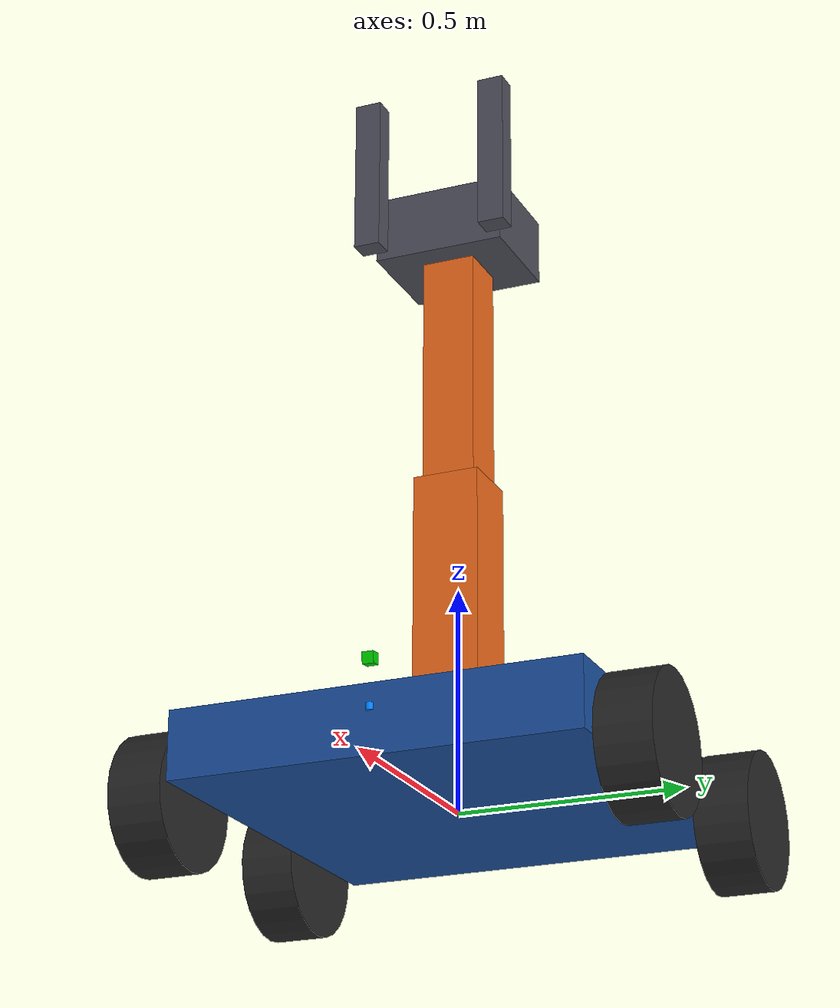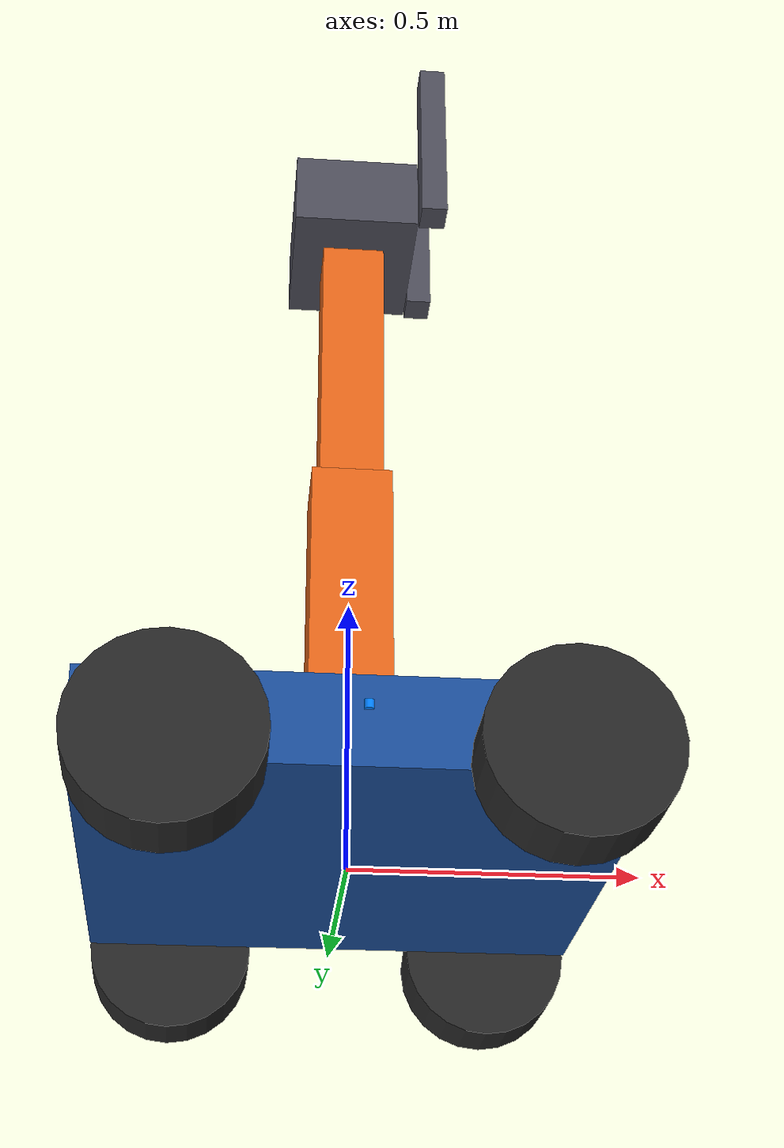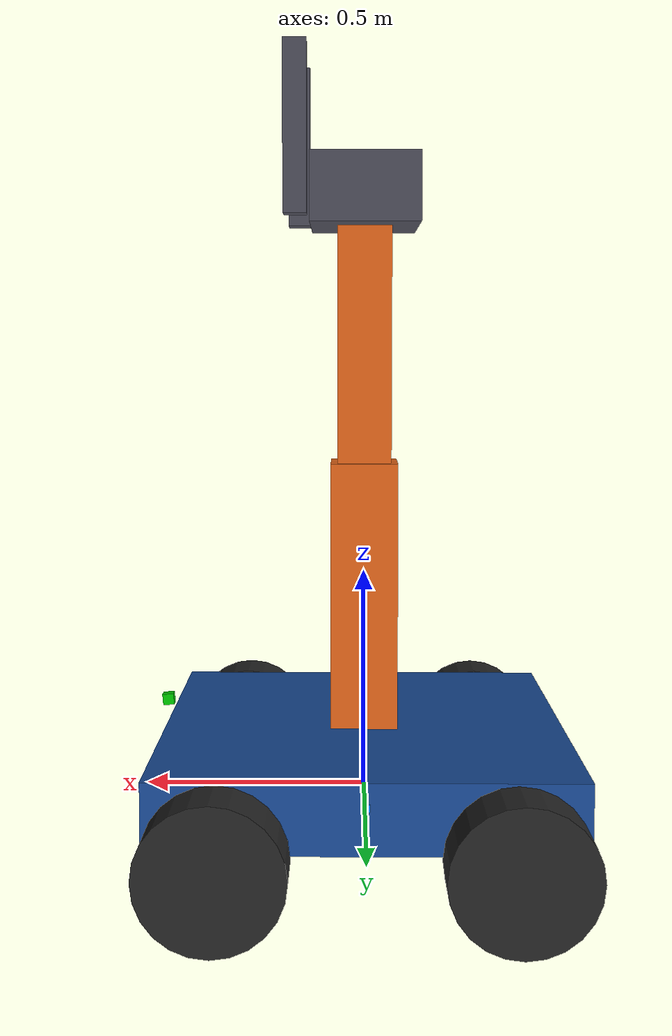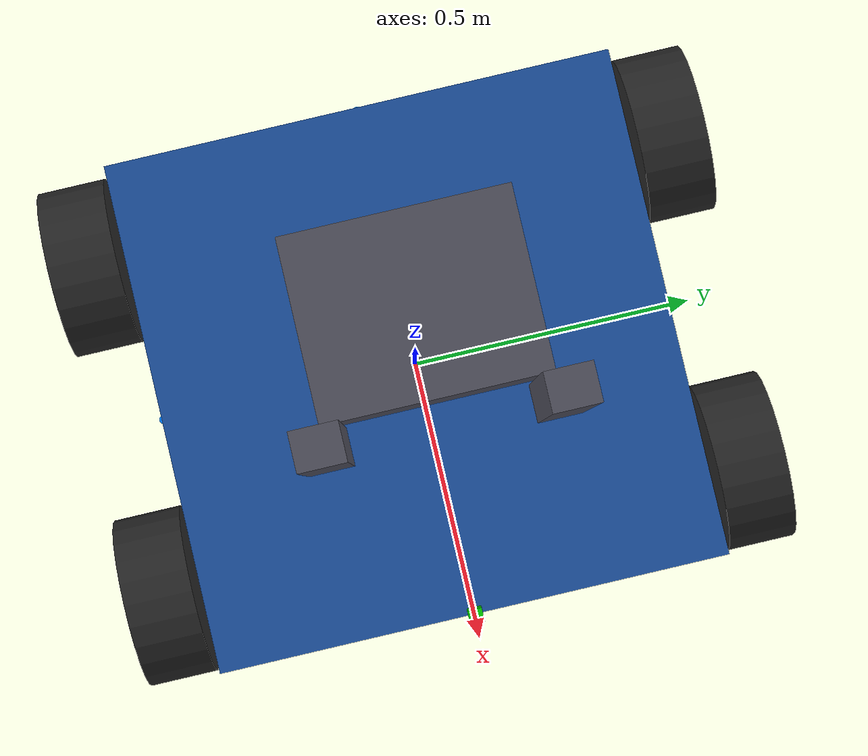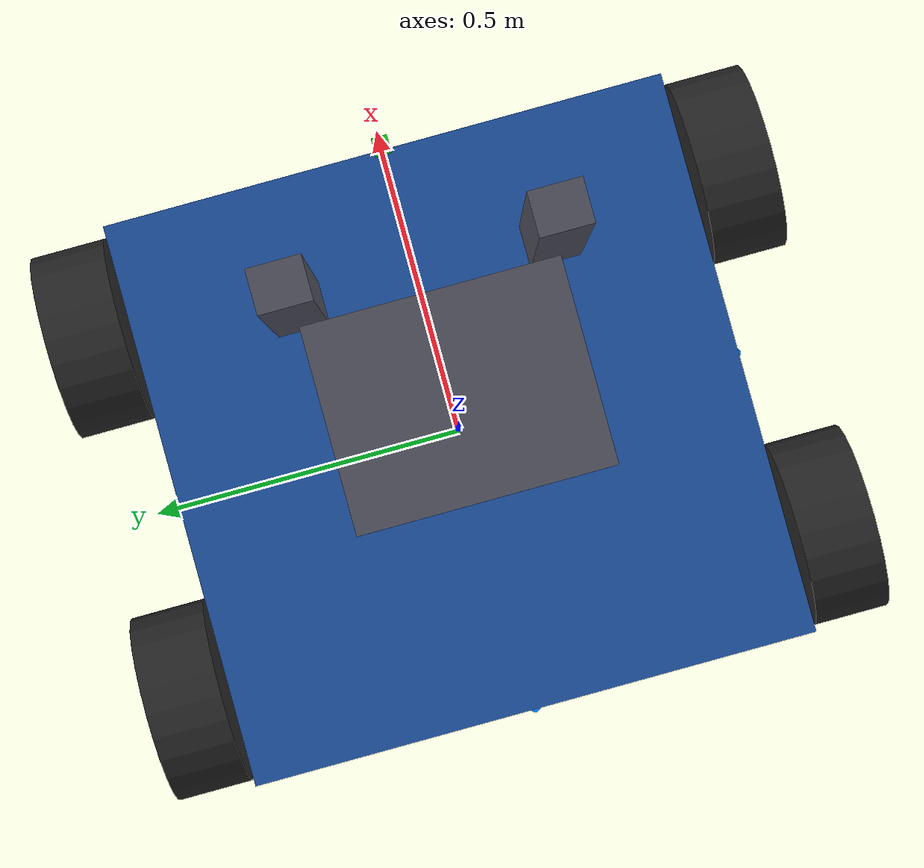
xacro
<?xml version="1.0"?>
<robot xmlns:xacro="http://www.ros.org/wiki/xacro" name="mon_robot_hybrid">

  <!-- ROBOT HYBRIDE: Version avec Caméra + Ultrasons + IMU           -->
  <!-- Alternative au LIDAR pour déploiement hardware réel            -->

  <xacro:macro name="inertial_box" params="mass x y z *origin">
    <inertial>
      <xacro:insert_block name="origin"/>
      <mass value="${mass}" />
      <inertia ixx="${(1/12) * mass * (y*y+z*z)}" ixy="0.0" ixz="0.0"
               iyy="${(1/12) * mass * (x*x+z*z)}" iyz="0.0"
               izz="${(1/12) * mass * (x*x+y*y)}" />
    </inertial>
  </xacro:macro>

  <xacro:macro name="inertial_cylinder" params="mass length radius *origin">
    <inertial>
      <xacro:insert_block name="origin"/>
      <mass value="${mass}" />
      <inertia ixx="${(1/12) * mass * (3*radius*radius + length*length)}" ixy="0.0" ixz="0.0"
               iyy="${(1/12) * mass * (3*radius*radius + length*length)}" iyz="0.0"
               izz="${(1/2) * mass * (radius*radius)}" />
    </inertial>
  </xacro:macro>

  <!-- Enhanced Material Definitions -->
  <material name="chassis_blue">
    <color rgba="0.1 0.3 0.6 1"/>
  </material>
  <material name="wheel_dark">
    <color rgba="0.15 0.15 0.15 1"/>
  </material>
  <material name="arm_orange">
    <color rgba="0.9 0.4 0.1 1"/>
  </material>
  <material name="gripper_metal">
    <color rgba="0.3 0.3 0.35 1"/>
  </material>
  <material name="accent_yellow">
    <color rgba="1.0 0.8 0.0 1"/>
  </material>

  <link name="base_link"></link>

  <joint name="chassis_joint" type="fixed">
    <parent link="base_link"/>
    <child link="chassis"/>
    <origin xyz="-0.3 0 0"/>
  </joint>

  <link name="chassis">
    <visual>
      <origin xyz="0.3 0 0.075"/>
      <geometry><box size="0.9 0.9 0.15"/></geometry>
      <material name="chassis_blue"/>
    </visual>
    <collision>
      <origin xyz="0.3 0 0.075"/>
      <geometry><box size="0.9 0.9 0.15"/></geometry>
    </collision>
    <xacro:inertial_box mass="0.5" x="0.9" y="0.9" z="0.15">
        <origin xyz="0.3 0 0.015" rpy="0 0 0"/>
    </xacro:inertial_box>
  </link>

  <xacro:macro name="wheel" params="prefix x_reflect y_reflect">
    <link name="${prefix}_link">
      <visual>
        <geometry><cylinder radius="0.15" length="0.12"/></geometry>
        <material name="wheel_dark"/>
      </visual>
      <collision>
        <geometry><cylinder radius="0.15" length="0.12"/></geometry>
      </collision>
      <xacro:inertial_cylinder mass="0.1" length="0.12" radius="0.15">
        <origin xyz="0 0 0" rpy="0 0 0"/>
      </xacro:inertial_cylinder>
    </link>

    <joint name="${prefix}_joint" type="continuous">
      <parent link="base_link"/>
      <child link="${prefix}_link"/>
      <origin xyz="${x_reflect*0.3} ${y_reflect*0.525} 0" rpy="-1.57 0 0"/>
      <axis xyz="0 0 1"/>
    </joint>
  </xacro:macro>

  <xacro:wheel prefix="front_left" x_reflect="1" y_reflect="1" />
  <xacro:wheel prefix="front_right" x_reflect="1" y_reflect="-1" />
  <xacro:wheel prefix="rear_left" x_reflect="-1" y_reflect="1" />
  <xacro:wheel prefix="rear_right" x_reflect="-1" y_reflect="-1" />

  <link name="arm_1_link">
    <visual>
      <origin xyz="0 0 0.3" rpy="0 0 0"/>
      <geometry><box size="0.15 0.15 0.6"/></geometry>
      <material name="arm_orange"/>
    </visual>
    <collision>
      <origin xyz="0 0 0.3" rpy="0 0 0"/>
      <geometry><box size="0.15 0.15 0.6"/></geometry>
    </collision>
    <xacro:inertial_box mass="0.1" x="0.15" y="0.15" z="0.6">
      <origin xyz="0 0 0.3" rpy="0 0 0"/>
    </xacro:inertial_box>
  </link>

  <joint name="shoulder_joint" type="revolute">
    <parent link="chassis"/>
    <child link="arm_1_link"/>
    <origin xyz="0.3 0 0.15" rpy="0 0 0"/>
    <axis xyz="0 1 0"/> <limit lower="-1.57" upper="1.57" effort="10" velocity="1"/>
    <dynamics damping="0.1" friction="0.1"/>
  </joint>

  <link name="arm_2_link">
    <visual>
      <origin xyz="0 0 0.3" rpy="0 0 0"/>
      <geometry><box size="0.12 0.12 0.6"/></geometry>
      <material name="arm_orange"/>
    </visual>
    <collision>
      <origin xyz="0 0 0.3" rpy="0 0 0"/>
      <geometry><box size="0.12 0.12 0.6"/></geometry>
    </collision>
    <xacro:inertial_box mass="0.1" x="0.12" y="0.12" z="0.6">
      <origin xyz="0 0 0.3" rpy="0 0 0"/>
    </xacro:inertial_box>
  </link>

  <joint name="elbow_joint" type="revolute">
    <parent link="arm_1_link"/>
    <child link="arm_2_link"/>
    <origin xyz="0 0 0.6" rpy="0 0 0"/> <axis xyz="0 1 0"/>
    <limit lower="-2.5" upper="2.5" effort="10" velocity="1"/>
    <dynamics damping="0.1" friction="0.1"/>
  </joint>

  <!-- PINCE - Joint de rotation -->
  <joint name="gripper_rotate_joint" type="revolute">
    <parent link="arm_2_link"/>
    <child link="gripper_base_link"/>
    <origin xyz="0 0 0.6" rpy="0 0 -1.5708"/>
    <axis xyz="0 0 1"/>
    <limit lower="-3.14159" upper="3.14159" effort="50" velocity="1.0"/>
    <dynamics damping="0.1" friction="0.1"/>
  </joint>

  <!-- PINCE - Base de la pince -->
  <link name="gripper_base_link">
    <visual>
      <origin xyz="0 0 0" rpy="0 0 0"/>
      <geometry><box size="0.3 0.24 0.15"/></geometry>
      <material name="gripper_metal"/>
    </visual>
    <collision>
      <origin xyz="0 0 0" rpy="0 0 0"/>
      <geometry><box size="0.3 0.24 0.15"/></geometry>
    </collision>
    <xacro:inertial_box mass="0.15" x="0.3" y="0.24" z="0.15">
      <origin xyz="0 0 0" rpy="0 0 0"/>
    </xacro:inertial_box>
  </link>

  <!-- DOIGT GAUCHE -->
  <link name="gripper_left_link">
    <visual>
      <origin xyz="-0.15 0.15 0.12" rpy="0 0 0"/>
      <geometry><box size="0.06 0.05 0.36"/></geometry>
      <material name="gripper_metal"/>
    </visual>
    <collision>
      <origin xyz="-0.15 0.15 0.12" rpy="0 0 0"/>
      <geometry><box size="0.06 0.05 0.36"/></geometry>
    </collision>
    <xacro:inertial_box mass="0.10" x="0.06" y="0.05" z="0.36">
      <origin xyz="-0.15 0.15 0.12" rpy="0 0 0"/>
    </xacro:inertial_box>
  </link>

  <joint name="gripper_left_joint" type="prismatic">
    <parent link="gripper_base_link"/>
    <child link="gripper_left_link"/>
    <origin xyz="0 0 0" rpy="0 0 0"/>
    <axis xyz="1 0 0"/>
    <limit lower="-0.60" upper="0.0" effort="300" velocity="0.5"/>
    <dynamics damping="0.5" friction="0.5"/>
  </joint>

  <!-- DOIGT DROIT -->
  <link name="gripper_right_link">
    <visual>
      <origin xyz="0.15 0.15 0.12" rpy="0 0 0"/>
      <geometry><box size="0.06 0.05 0.36"/></geometry>
      <material name="gripper_metal"/>
    </visual>
    <collision>
      <origin xyz="0.15 0.15 0.12" rpy="0 0 0"/>
      <geometry><box size="0.06 0.05 0.36"/></geometry>
    </collision>
    <xacro:inertial_box mass="0.10" x="0.06" y="0.05" z="0.36">
      <origin xyz="0.15 0.15 0.12" rpy="0 0 0"/>
    </xacro:inertial_box>
  </link>

  <joint name="gripper_right_joint" type="prismatic">
    <parent link="gripper_base_link"/>
    <child link="gripper_right_link"/>
    <origin xyz="0 0 0" rpy="0 0 0"/>
    <axis xyz="-1 0 0"/>
    <limit lower="-0.60" upper="0.0" effort="300" velocity="0.5"/>
    <dynamics damping="0.5" friction="0.5"/>
  </joint>

  <!-- ==================== ROS2 CONTROL ==================== -->
  <ros2_control name="GazeboSystem" type="system">
    <hardware>
      <plugin>gazebo_ros2_control/GazeboSystem</plugin>
    </hardware>

    <xacro:macro name="control_joint" params="name">
      <joint name="${name}">
        <command_interface name="velocity">
          <param name="min">-10</param>
          <param name="max">10</param>
        </command_interface>
        <state_interface name="position"/>
        <state_interface name="velocity"/>
      </joint>
    </xacro:macro>

    <!-- Bras + Rotation Grip (POSITION) -->
    <joint name="shoulder_joint">
        <command_interface name="position"/>
        <state_interface name="position"/>
        <state_interface name="velocity"/>
    </joint>
    <joint name="elbow_joint">
        <command_interface name="position"/>
        <state_interface name="position"/>
        <state_interface name="velocity"/>
    </joint>
    <joint name="gripper_rotate_joint">
        <command_interface name="position"/>
        <state_interface name="position"/>
        <state_interface name="velocity"/>
    </joint>

    <!-- Roues (VELOCITY) -->
    <xacro:control_joint name="front_left_joint"/>
    <xacro:control_joint name="front_right_joint"/>
    <xacro:control_joint name="rear_left_joint"/>
    <xacro:control_joint name="rear_right_joint"/>

    <!-- Pince - Doigts (POSITION) -->
    <joint name="gripper_left_joint">
        <command_interface name="position"/>
        <state_interface name="position"/>
        <state_interface name="velocity"/>
    </joint>
    <joint name="gripper_right_joint">
        <command_interface name="position"/>
        <state_interface name="position"/>
        <state_interface name="velocity"/>
    </joint>
  </ros2_control>

  <!-- Gazebo Material Colors -->
  <gazebo reference="chassis">
    <material>Gazebo/Blue</material>
  </gazebo>
  <gazebo reference="front_left_link">
    <material>Gazebo/DarkGrey</material>
    <mu1>100.0</mu1>
    <mu2>100.0</mu2>
    <kp>1000000.0</kp>
    <kd>100.0</kd>
    <minDepth>0.001</minDepth>
  </gazebo>
  <gazebo reference="front_right_link">
    <material>Gazebo/DarkGrey</material>
    <mu1>100.0</mu1>
    <mu2>100.0</mu2>
    <kp>1000000.0</kp>
    <kd>100.0</kd>
    <minDepth>0.001</minDepth>
  </gazebo>
  <gazebo reference="rear_left_link">
    <material>Gazebo/DarkGrey</material>
    <mu1>100.0</mu1>
    <mu2>100.0</mu2>
    <kp>1000000.0</kp>
    <kd>100.0</kd>
    <minDepth>0.001</minDepth>
  </gazebo>
  <gazebo reference="rear_right_link">
    <material>Gazebo/DarkGrey</material>
    <mu1>100.0</mu1>
    <mu2>100.0</mu2>
    <kp>1000000.0</kp>
    <kd>100.0</kd>
    <minDepth>0.001</minDepth>
  </gazebo>
  <gazebo reference="arm_1_link">
    <material>Gazebo/Orange</material>
  </gazebo>
  <gazebo reference="arm_2_link">
    <material>Gazebo/Orange</material>
  </gazebo>
  <gazebo reference="gripper_base_link">
    <material>Gazebo/Grey</material>
  </gazebo>
  <gazebo reference="gripper_left_link">
    <material>Gazebo/Grey</material>
  </gazebo>
  <gazebo reference="gripper_right_link">
    <material>Gazebo/Grey</material>
  </gazebo>

  <gazebo>
    <plugin name="gazebo_ros2_control" filename="libgazebo_ros2_control.so">
      <parameters>$(find my_robot_controller)/config/my_controllers.yaml</parameters>
    </plugin>
  </gazebo>

  <!-- ==================== INCLURE CAPTEURS HYBRIDES ==================== -->
  <!-- Caméra + IMU + 8 Ultrasons au lieu du LIDAR -->
  <xacro:include filename="$(find my_robot_controller)/description/hybrid_sensors.xacro" />

</robot>

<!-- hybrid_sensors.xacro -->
<robot xmlns:xacro="http://www.ros.org/wiki/xacro">

  <!-- SYSTÈME HYBRIDE: Caméra + 8 Ultrasons + IMU                    -->
  <!-- Alternative au LIDAR pour robot réel                           -->

  <!-- ==================== CAMERA RASPBERRY PI V2 ==================== -->
  <link name="camera_link">
    <visual>
      <origin xyz="0 0 0" rpy="0 0 0"/>
      <geometry>
        <box size="0.025 0.025 0.025"/>
      </geometry>
      <material name="camera_green">
        <color rgba="0.0 0.8 0.0 1"/>
      </material>
    </visual>
    <collision>
      <origin xyz="0 0 0" rpy="0 0 0"/>
      <geometry>
        <box size="0.025 0.025 0.025"/>
      </geometry>
    </collision>
    <inertial>
      <mass value="0.01"/>
      <origin xyz="0 0 0" rpy="0 0 0"/>
      <inertia ixx="0.00001" ixy="0" ixz="0" iyy="0.00001" iyz="0" izz="0.00001"/>
    </inertial>
  </link>

  <!-- Camera optical frame (convention ROS: Z forward, X right, Y down) -->
  <link name="camera_optical_frame"/>

  <joint name="camera_joint" type="fixed">
    <parent link="chassis"/>
    <child link="camera_link"/>
    <!-- Position: avant du chassis, hauteur appropriée pour SLAM visuel -->
    <origin xyz="0.75 0 0.2" rpy="0 0.1 0"/>
  </joint>

  <joint name="camera_optical_joint" type="fixed">
    <parent link="camera_link"/>
    <child link="camera_optical_frame"/>
    <origin xyz="0 0 0" rpy="${-pi/2} 0 ${-pi/2}"/>
  </joint>

  <!-- Gazebo Camera Plugin - Simule Raspberry Pi Camera V2 -->
  <gazebo reference="camera_link">
    <material>Gazebo/Green</material>
    <sensor name="camera" type="camera">
      <pose>0 0 0 0 0 0</pose>
      <visualize>true</visualize>
      <update_rate>30</update_rate>
      <camera name="rgb_camera">
        <horizontal_fov>1.089</horizontal_fov> <!-- 62.2 degrés -->
        <image>
          <width>640</width>
          <height>480</height>
          <format>R8G8B8</format>
        </image>
        <clip>
          <near>0.05</near>
          <far>15.0</far>
        </clip>
        <noise>
          <type>gaussian</type>
          <mean>0.0</mean>
          <stddev>0.007</stddev>
        </noise>
      </camera>
      <plugin name="camera_plugin" filename="libgazebo_ros_camera.so">
        <ros>
          <remapping>~/image_raw:=camera/image_raw</remapping>
          <remapping>~/camera_info:=camera/camera_info</remapping>
        </ros>
        <frame_name>camera_optical_frame</frame_name>
      </plugin>
    </sensor>
  </gazebo>

  <!-- ==================== IMU MPU6050 ==================== -->
  <link name="imu_link">
    <visual>
      <origin xyz="0 0 0" rpy="0 0 0"/>
      <geometry>
        <box size="0.02 0.016 0.003"/>
      </geometry>
      <material name="imu_purple">
        <color rgba="0.5 0.0 0.5 1"/>
      </material>
    </visual>
    <collision>
      <origin xyz="0 0 0" rpy="0 0 0"/>
      <geometry>
        <box size="0.02 0.016 0.003"/>
      </geometry>
    </collision>
    <inertial>
      <mass value="0.005"/>
      <origin xyz="0 0 0" rpy="0 0 0"/>
      <inertia ixx="0.000001" ixy="0" ixz="0" iyy="0.000001" iyz="0" izz="0.000001"/>
    </inertial>
  </link>

  <joint name="imu_joint" type="fixed">
    <parent link="chassis"/>
    <child link="imu_link"/>
    <!-- Position: centre du chassis pour stabilité -->
    <origin xyz="0.3 0 0.16" rpy="0 0 0"/>
  </joint>

  <!-- Gazebo IMU Plugin - Simule MPU6050 -->
  <gazebo reference="imu_link">
    <material>Gazebo/Purple</material>
    <sensor name="imu_sensor" type="imu">
      <pose>0 0 0 0 0 0</pose>
      <always_on>true</always_on>
      <update_rate>100</update_rate>
      <imu>
        <angular_velocity>
          <x>
            <noise type="gaussian">
              <mean>0.0</mean>
              <stddev>0.0002</stddev>
            </noise>
          </x>
          <y>
            <noise type="gaussian">
              <mean>0.0</mean>
              <stddev>0.0002</stddev>
            </noise>
          </y>
          <z>
            <noise type="gaussian">
              <mean>0.0</mean>
              <stddev>0.0002</stddev>
            </noise>
          </z>
        </angular_velocity>
        <linear_acceleration>
          <x>
            <noise type="gaussian">
              <mean>0.0</mean>
              <stddev>0.017</stddev>
            </noise>
          </x>
          <y>
            <noise type="gaussian">
              <mean>0.0</mean>
              <stddev>0.017</stddev>
            </noise>
          </y>
          <z>
            <noise type="gaussian">
              <mean>0.0</mean>
              <stddev>0.017</stddev>
            </noise>
          </z>
        </linear_acceleration>
      </imu>
      <plugin name="imu_plugin" filename="libgazebo_ros_imu_sensor.so">
        <ros>
          <remapping>~/out:=imu/data</remapping>
        </ros>
        <frame_name>imu_link</frame_name>
        <initial_orientation_as_reference>false</initial_orientation_as_reference>
      </plugin>
    </sensor>
  </gazebo>

  <!-- ==================== 8 CAPTEURS ULTRASONIQUES HC-SR04 ==================== -->
  <!-- Macro pour créer un capteur ultrasonique -->
  <xacro:macro name="ultrasonic_sensor" params="name parent x y z yaw">
    <link name="${name}_link">
      <visual>
        <origin xyz="0 0 0" rpy="0 0 0"/>
        <geometry>
          <cylinder radius="0.008" length="0.015"/>
        </geometry>
        <material name="ultrasonic_blue">
          <color rgba="0.0 0.5 1.0 1"/>
        </material>
      </visual>
      <collision>
        <origin xyz="0 0 0" rpy="0 0 0"/>
        <geometry>
          <cylinder radius="0.008" length="0.015"/>
        </geometry>
      </collision>
      <inertial>
        <mass value="0.01"/>
        <origin xyz="0 0 0" rpy="0 0 0"/>
        <inertia ixx="0.000001" ixy="0" ixz="0" iyy="0.000001" iyz="0" izz="0.000001"/>
      </inertial>
    </link>

    <joint name="${name}_joint" type="fixed">
      <parent link="${parent}"/>
      <child link="${name}_link"/>
      <origin xyz="${x} ${y} ${z}" rpy="0 0 ${yaw}"/>
    </joint>

    <!-- Gazebo Range Sensor - Simule HC-SR04 (portée 2cm - 4m, angle 15°) -->
    <gazebo reference="${name}_link">
      <material>Gazebo/Blue</material>
      <sensor name="${name}" type="ray">
        <pose>0 0 0 0 0 0</pose>
        <visualize>true</visualize>
        <update_rate>20</update_rate>
        <ray>
          <scan>
            <horizontal>
              <samples>5</samples>
              <resolution>1</resolution>
              <min_angle>-0.13</min_angle>  <!-- 15° total -->
              <max_angle>0.13</max_angle>
            </horizontal>
          </scan>
          <range>
            <min>0.02</min>
            <max>4.0</max>
            <resolution>0.01</resolution>
          </range>
          <noise>
            <type>gaussian</type>
            <mean>0.0</mean>
            <stddev>0.02</stddev>
          </noise>
        </ray>
        <plugin name="${name}_plugin" filename="libgazebo_ros_ray_sensor.so">
          <ros>
            <remapping>~/out:=ultrasonic/${name}</remapping>
          </ros>
          <output_type>sensor_msgs/Range</output_type>
          <frame_name>${name}_link</frame_name>
          <radiation_type>ultrasound</radiation_type>
          <fov>0.26</fov>
        </plugin>
      </sensor>
    </gazebo>
  </xacro:macro>

  <!-- 8 capteurs ultrasoniques répartis à 45° autour du robot -->
  <!-- Positions sur le périmètre du chassis (0.9m x 0.9m) -->

  <!-- AVANT -->
  <xacro:ultrasonic_sensor name="ultrasonic_front" parent="chassis"
                           x="0.75" y="0" z="0.1" yaw="0"/>

  <!-- AVANT GAUCHE (45°) -->
  <xacro:ultrasonic_sensor name="ultrasonic_front_left" parent="chassis"
                           x="0.62" y="0.32" z="0.1" yaw="0.785"/>

  <!-- GAUCHE -->
  <xacro:ultrasonic_sensor name="ultrasonic_left" parent="chassis"
                           x="0.3" y="0.45" z="0.1" yaw="1.571"/>

  <!-- ARRIÈRE GAUCHE (135°) -->
  <xacro:ultrasonic_sensor name="ultrasonic_rear_left" parent="chassis"
                           x="-0.02" y="0.32" z="0.1" yaw="2.356"/>

  <!-- ARRIÈRE -->
  <xacro:ultrasonic_sensor name="ultrasonic_rear" parent="chassis"
                           x="-0.15" y="0" z="0.1" yaw="3.141"/>

  <!-- ARRIÈRE DROIT (225°) -->
  <xacro:ultrasonic_sensor name="ultrasonic_rear_right" parent="chassis"
                           x="-0.02" y="-0.32" z="0.1" yaw="-2.356"/>

  <!-- DROIT -->
  <xacro:ultrasonic_sensor name="ultrasonic_right" parent="chassis"
                           x="0.3" y="-0.45" z="0.1" yaw="-1.571"/>

  <!-- AVANT DROIT (315°) -->
  <xacro:ultrasonic_sensor name="ultrasonic_front_right" parent="chassis"
                           x="0.62" y="-0.32" z="0.1" yaw="-0.785"/>

</robot>
